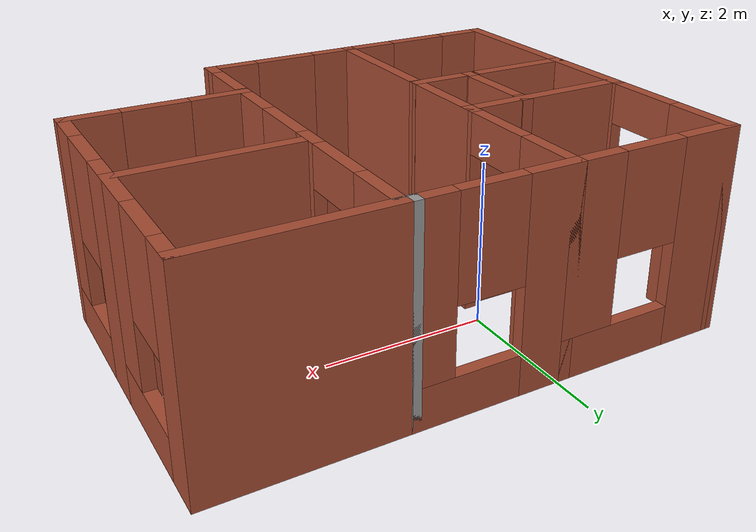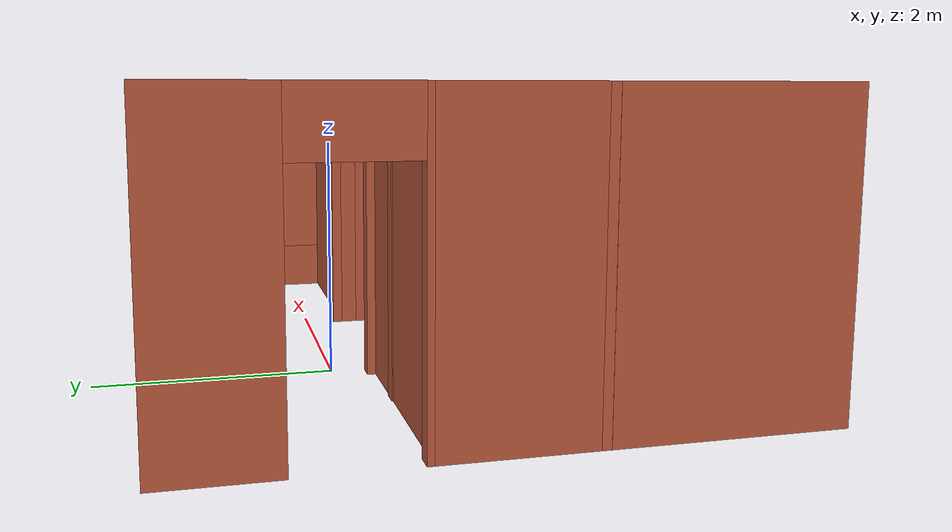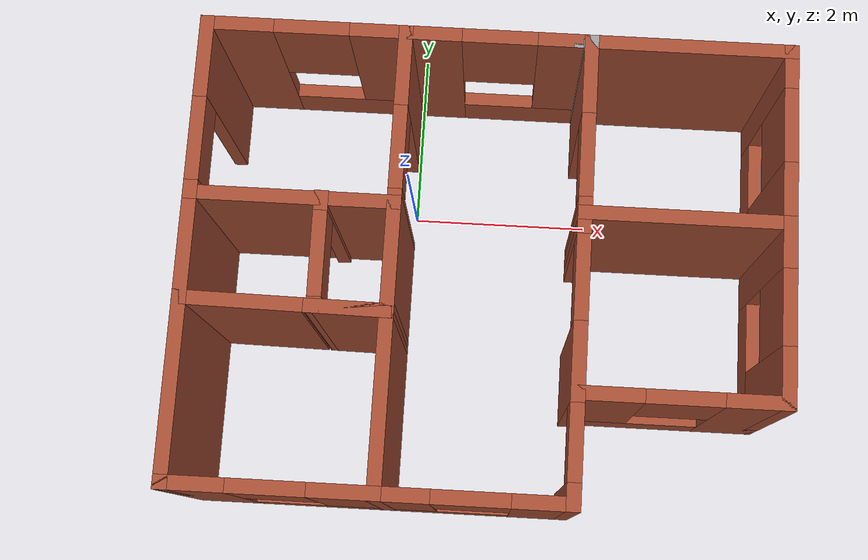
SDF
<?xml version='1.0'?>
<sdf version='1.7'>
  <model name='2house'>
    <pose>0.889468 -0.990027 0 0 -0 0</pose>
    <link name='Wall_0'>
      <collision name='Wall_0_Collision'>
        <geometry>
          <box>
            <size>2 0.15 2.5</size>
          </box>
        </geometry>
        <pose>0 0 1.25 0 -0 0</pose>
      </collision>
      <visual name='Wall_0_Visual'>
        <pose>0 0 1.25 0 -0 0</pose>
        <geometry>
          <box>
            <size>2 0.15 2.5</size>
          </box>
        </geometry>
        <material>
          <script>
            <uri>file://media/materials/scripts/gazebo.material</uri>
            <name>Gazebo/Bricks</name>
          </script>
          <ambient>1 1 1 1</ambient>
        </material>
        <meta>
          <layer>0</layer>
        </meta>
      </visual>
      <pose>-3.07947 -1.47497 0 0 -0 -1.5708</pose>
    </link>
    <link name='Wall_1'>
      <pose>-2.02947 -2.39997 0 0 -0 0</pose>
      <visual name='Wall_1_Visual_0'>
        <pose>-0.770774 0 1.25 0 -0 0</pose>
        <geometry>
          <box>
            <size>0.708452 0.15 2.5</size>
          </box>
        </geometry>
        <material>
          <script>
            <uri>file://media/materials/scripts/gazebo.material</uri>
            <name>Gazebo/Bricks</name>
          </script>
          <ambient>1 1 1 1</ambient>
        </material>
        <meta>
          <layer>0</layer>
        </meta>
      </visual>
      <collision name='Wall_1_Collision_0'>
        <geometry>
          <box>
            <size>0.708452 0.15 2.5</size>
          </box>
        </geometry>
        <pose>-0.770774 0 1.25 0 -0 0</pose>
      </collision>
      <visual name='Wall_1_Visual_1'>
        <pose>0.354226 0 0.25 0 -0 0</pose>
        <geometry>
          <box>
            <size>1.54155 0.15 0.5</size>
          </box>
        </geometry>
        <material>
          <script>
            <uri>file://media/materials/scripts/gazebo.material</uri>
            <name>Gazebo/Bricks</name>
          </script>
          <ambient>1 1 1 1</ambient>
        </material>
        <meta>
          <layer>0</layer>
        </meta>
      </visual>
      <collision name='Wall_1_Collision_1'>
        <geometry>
          <box>
            <size>1.54155 0.15 0.5</size>
          </box>
        </geometry>
        <pose>0.354226 0 0.25 0 -0 0</pose>
      </collision>
      <visual name='Wall_1_Visual_2'>
        <pose>0.754226 0 1.5 0 -0 0</pose>
        <geometry>
          <box>
            <size>0.741548 0.15 2</size>
          </box>
        </geometry>
        <material>
          <script>
            <uri>file://media/materials/scripts/gazebo.material</uri>
            <name>Gazebo/Bricks</name>
          </script>
          <ambient>1 1 1 1</ambient>
        </material>
        <meta>
          <layer>0</layer>
        </meta>
      </visual>
      <collision name='Wall_1_Collision_2'>
        <geometry>
          <box>
            <size>0.741548 0.15 2</size>
          </box>
        </geometry>
        <pose>0.754226 0 1.5 0 -0 0</pose>
      </collision>
      <visual name='Wall_1_Visual_3'>
        <pose>-0.016548 0 1.9 0 -0 0</pose>
        <geometry>
          <box>
            <size>0.8 0.15 1.2</size>
          </box>
        </geometry>
        <material>
          <script>
            <uri>file://media/materials/scripts/gazebo.material</uri>
            <name>Gazebo/Bricks</name>
          </script>
          <ambient>1 1 1 1</ambient>
        </material>
        <meta>
          <layer>0</layer>
        </meta>
      </visual>
      <collision name='Wall_1_Collision_3'>
        <geometry>
          <box>
            <size>0.8 0.15 1.2</size>
          </box>
        </geometry>
        <pose>-0.016548 0 1.9 0 -0 0</pose>
      </collision>
    </link>
    <link name='Wall_17'>
      <collision name='Wall_17_Collision'>
        <geometry>
          <box>
            <size>1.25 0.15 2.5</size>
          </box>
        </geometry>
        <pose>0 0 1.25 0 -0 0</pose>
      </collision>
      <visual name='Wall_17_Visual'>
        <pose>0 0 1.25 0 -0 0</pose>
        <geometry>
          <box>
            <size>1.25 0.15 2.5</size>
          </box>
        </geometry>
        <material>
          <script>
            <uri>file://media/materials/scripts/gazebo.material</uri>
            <name>Gazebo/Bricks</name>
          </script>
          <ambient>1 1 1 1</ambient>
        </material>
        <meta>
          <layer>0</layer>
        </meta>
      </visual>
      <pose>-3.07947 2.7e-05 0 0 -0 1.5708</pose>
    </link>
    <link name='Wall_18'>
      <collision name='Wall_18_Collision'>
        <geometry>
          <box>
            <size>2.25 0.15 2.5</size>
          </box>
        </geometry>
        <pose>0 0 1.25 0 -0 0</pose>
      </collision>
      <visual name='Wall_18_Visual'>
        <pose>0 0 1.25 0 -0 0</pose>
        <geometry>
          <box>
            <size>2.25 0.15 2.5</size>
          </box>
        </geometry>
        <material>
          <script>
            <uri>file://media/materials/scripts/gazebo.material</uri>
            <name>Gazebo/Bricks</name>
          </script>
          <ambient>1 1 1 1</ambient>
        </material>
        <meta>
          <layer>0</layer>
        </meta>
      </visual>
      <pose>-2.02947 0.550027 0 0 -0 0</pose>
    </link>
    <link name='Wall_19'>
      <collision name='Wall_19_Collision'>
        <geometry>
          <box>
            <size>1.28018 0.15 2.5</size>
          </box>
        </geometry>
        <pose>0 0 1.25 0 -0 0</pose>
      </collision>
      <visual name='Wall_19_Visual'>
        <pose>0 0 1.25 0 -0 0</pose>
        <geometry>
          <box>
            <size>1.28018 0.15 2.5</size>
          </box>
        </geometry>
        <material>
          <script>
            <uri>file://media/materials/scripts/gazebo.material</uri>
            <name>Gazebo/Bricks</name>
          </script>
          <ambient>1 1 1 1</ambient>
        </material>
        <meta>
          <layer>0</layer>
        </meta>
      </visual>
      <pose>-0.979468 -0.014973 0 0 -0 -1.5708</pose>
    </link>
    <link name='Wall_2'>
      <collision name='Wall_2_Collision'>
        <geometry>
          <box>
            <size>1.97011 0.15 2.5</size>
          </box>
        </geometry>
        <pose>0 0 1.25 0 -0 0</pose>
      </collision>
      <visual name='Wall_2_Visual'>
        <pose>0 0 1.25 0 -0 0</pose>
        <geometry>
          <box>
            <size>1.97011 0.15 2.5</size>
          </box>
        </geometry>
        <material>
          <script>
            <uri>file://media/materials/scripts/gazebo.material</uri>
            <name>Gazebo/Bricks</name>
          </script>
          <ambient>1 1 1 1</ambient>
        </material>
        <meta>
          <layer>0</layer>
        </meta>
      </visual>
      <pose>-0.979468 -1.48997 0 0 -0 1.5708</pose>
    </link>
    <link name='Wall_20'>
      <collision name='Wall_20_Collision'>
        <geometry>
          <box>
            <size>0.890068 0.15 2.5</size>
          </box>
        </geometry>
        <pose>0 0 1.25 0 -0 0</pose>
      </collision>
      <visual name='Wall_20_Visual'>
        <pose>0 0 1.25 0 -0 0</pose>
        <geometry>
          <box>
            <size>0.890068 0.15 2.5</size>
          </box>
        </geometry>
        <material>
          <script>
            <uri>file://media/materials/scripts/gazebo.material</uri>
            <name>Gazebo/Bricks</name>
          </script>
          <ambient>1 1 1 1</ambient>
        </material>
        <meta>
          <layer>0</layer>
        </meta>
      </visual>
      <pose>-1.35947 -0.574973 0 0 -0 3.12808</pose>
    </link>
    <link name='Wall_21'>
      <pose>-1.72447 -0.004973 0 0 -0 1.57965</pose>
      <visual name='Wall_21_Visual_0'>
        <pose>-0.55431 0 1.25 0 -0 0</pose>
        <geometry>
          <box>
            <size>0.171424 0.15 2.5</size>
          </box>
        </geometry>
        <material>
          <script>
            <uri>file://media/materials/scripts/gazebo.material</uri>
            <name>Gazebo/Bricks</name>
          </script>
          <ambient>1 1 1 1</ambient>
        </material>
        <meta>
          <layer>0</layer>
        </meta>
      </visual>
      <collision name='Wall_21_Collision_0'>
        <geometry>
          <box>
            <size>0.171424 0.15 2.5</size>
          </box>
        </geometry>
        <pose>-0.55431 0 1.25 0 -0 0</pose>
      </collision>
      <visual name='Wall_21_Visual_1'>
        <pose>0.535712 0 1.25 0 -0 0</pose>
        <geometry>
          <box>
            <size>0.20862 0.15 2.5</size>
          </box>
        </geometry>
        <material>
          <script>
            <uri>file://media/materials/scripts/gazebo.material</uri>
            <name>Gazebo/Bricks</name>
          </script>
          <ambient>1 1 1 1</ambient>
        </material>
        <meta>
          <layer>0</layer>
        </meta>
      </visual>
      <collision name='Wall_21_Collision_1'>
        <geometry>
          <box>
            <size>0.20862 0.15 2.5</size>
          </box>
        </geometry>
        <pose>0.535712 0 1.25 0 -0 0</pose>
      </collision>
      <visual name='Wall_21_Visual_2'>
        <pose>-0.018598 0 2.25 0 -0 0</pose>
        <geometry>
          <box>
            <size>0.9 0.15 0.5</size>
          </box>
        </geometry>
        <material>
          <script>
            <uri>file://media/materials/scripts/gazebo.material</uri>
            <name>Gazebo/Bricks</name>
          </script>
          <ambient>1 1 1 1</ambient>
        </material>
        <meta>
          <layer>0</layer>
        </meta>
      </visual>
      <collision name='Wall_21_Collision_2'>
        <geometry>
          <box>
            <size>0.9 0.15 0.5</size>
          </box>
        </geometry>
        <pose>-0.018598 0 2.25 0 -0 0</pose>
      </collision>
    </link>
    <link name='Wall_23'>
      <pose>-3.07947 1.47503 0 0 -0 1.5708</pose>
      <visual name='Wall_23_Visual_0'>
        <pose>-0.89882 0 1.25 0 -0 0</pose>
        <geometry>
          <box>
            <size>0.202361 0.15 2.5</size>
          </box>
        </geometry>
        <material>
          <script>
            <uri>file://media/materials/scripts/gazebo.material</uri>
            <name>Gazebo/Bricks</name>
          </script>
          <ambient>1 1 1 1</ambient>
        </material>
        <meta>
          <layer>0</layer>
        </meta>
      </visual>
      <collision name='Wall_23_Collision_0'>
        <geometry>
          <box>
            <size>0.202361 0.15 2.5</size>
          </box>
        </geometry>
        <pose>-0.89882 0 1.25 0 -0 0</pose>
      </collision>
      <visual name='Wall_23_Visual_1'>
        <pose>0.55118 0 1.25 0 -0 0</pose>
        <geometry>
          <box>
            <size>0.897639 0.15 2.5</size>
          </box>
        </geometry>
        <material>
          <script>
            <uri>file://media/materials/scripts/gazebo.material</uri>
            <name>Gazebo/Bricks</name>
          </script>
          <ambient>1 1 1 1</ambient>
        </material>
        <meta>
          <layer>0</layer>
        </meta>
      </visual>
      <collision name='Wall_23_Collision_1'>
        <geometry>
          <box>
            <size>0.897639 0.15 2.5</size>
          </box>
        </geometry>
        <pose>0.55118 0 1.25 0 -0 0</pose>
      </collision>
      <visual name='Wall_23_Visual_2'>
        <pose>-0.347639 0 2.25 0 -0 0</pose>
        <geometry>
          <box>
            <size>0.9 0.15 0.5</size>
          </box>
        </geometry>
        <material>
          <script>
            <uri>file://media/materials/scripts/gazebo.material</uri>
            <name>Gazebo/Bricks</name>
          </script>
          <ambient>1 1 1 1</ambient>
        </material>
        <meta>
          <layer>0</layer>
        </meta>
      </visual>
      <collision name='Wall_23_Collision_2'>
        <geometry>
          <box>
            <size>0.9 0.15 0.5</size>
          </box>
        </geometry>
        <pose>-0.347639 0 2.25 0 -0 0</pose>
      </collision>
    </link>
    <link name='Wall_25'>
      <pose>-2.02947 2.40003 0 0 -0 0</pose>
      <visual name='Wall_25_Visual_0'>
        <pose>-0.735774 0 1.25 0 -0 0</pose>
        <geometry>
          <box>
            <size>0.778452 0.15 2.5</size>
          </box>
        </geometry>
        <material>
          <script>
            <uri>file://media/materials/scripts/gazebo.material</uri>
            <name>Gazebo/Bricks</name>
          </script>
          <ambient>1 1 1 1</ambient>
        </material>
        <meta>
          <layer>0</layer>
        </meta>
      </visual>
      <collision name='Wall_25_Collision_0'>
        <geometry>
          <box>
            <size>0.778452 0.15 2.5</size>
          </box>
        </geometry>
        <pose>-0.735774 0 1.25 0 -0 0</pose>
      </collision>
      <visual name='Wall_25_Visual_1'>
        <pose>0.389226 0 0.25 0 -0 0</pose>
        <geometry>
          <box>
            <size>1.47155 0.15 0.5</size>
          </box>
        </geometry>
        <material>
          <script>
            <uri>file://media/materials/scripts/gazebo.material</uri>
            <name>Gazebo/Bricks</name>
          </script>
          <ambient>1 1 1 1</ambient>
        </material>
        <meta>
          <layer>0</layer>
        </meta>
      </visual>
      <collision name='Wall_25_Collision_1'>
        <geometry>
          <box>
            <size>1.47155 0.15 0.5</size>
          </box>
        </geometry>
        <pose>0.389226 0 0.25 0 -0 0</pose>
      </collision>
      <visual name='Wall_25_Visual_2'>
        <pose>0.789226 0 1.5 0 -0 0</pose>
        <geometry>
          <box>
            <size>0.671548 0.15 2</size>
          </box>
        </geometry>
        <material>
          <script>
            <uri>file://media/materials/scripts/gazebo.material</uri>
            <name>Gazebo/Bricks</name>
          </script>
          <ambient>1 1 1 1</ambient>
        </material>
        <meta>
          <layer>0</layer>
        </meta>
      </visual>
      <collision name='Wall_25_Collision_2'>
        <geometry>
          <box>
            <size>0.671548 0.15 2</size>
          </box>
        </geometry>
        <pose>0.789226 0 1.5 0 -0 0</pose>
      </collision>
      <visual name='Wall_25_Visual_3'>
        <pose>0.053452 0 1.9 0 -0 0</pose>
        <geometry>
          <box>
            <size>0.8 0.15 1.2</size>
          </box>
        </geometry>
        <material>
          <script>
            <uri>file://media/materials/scripts/gazebo.material</uri>
            <name>Gazebo/Bricks</name>
          </script>
          <ambient>1 1 1 1</ambient>
        </material>
        <meta>
          <layer>0</layer>
        </meta>
      </visual>
      <collision name='Wall_25_Collision_3'>
        <geometry>
          <box>
            <size>0.8 0.15 1.2</size>
          </box>
        </geometry>
        <pose>0.053452 0 1.9 0 -0 0</pose>
      </collision>
    </link>
    <link name='Wall_26'>
      <pose>-0.979468 1.47503 0 0 -0 -1.5708</pose>
      <visual name='Wall_26_Visual_0'>
        <pose>-0.56118 0 1.25 0 -0 0</pose>
        <geometry>
          <box>
            <size>0.877639 0.15 2.5</size>
          </box>
        </geometry>
        <material>
          <script>
            <uri>file://media/materials/scripts/gazebo.material</uri>
            <name>Gazebo/Bricks</name>
          </script>
          <ambient>1 1 1 1</ambient>
        </material>
        <meta>
          <layer>0</layer>
        </meta>
      </visual>
      <collision name='Wall_26_Collision_0'>
        <geometry>
          <box>
            <size>0.877639 0.15 2.5</size>
          </box>
        </geometry>
        <pose>-0.56118 0 1.25 0 -0 0</pose>
      </collision>
      <visual name='Wall_26_Visual_1'>
        <pose>0.88882 0 1.25 0 -0 0</pose>
        <geometry>
          <box>
            <size>0.222361 0.15 2.5</size>
          </box>
        </geometry>
        <material>
          <script>
            <uri>file://media/materials/scripts/gazebo.material</uri>
            <name>Gazebo/Bricks</name>
          </script>
          <ambient>1 1 1 1</ambient>
        </material>
        <meta>
          <layer>0</layer>
        </meta>
      </visual>
      <collision name='Wall_26_Collision_1'>
        <geometry>
          <box>
            <size>0.222361 0.15 2.5</size>
          </box>
        </geometry>
        <pose>0.88882 0 1.25 0 -0 0</pose>
      </collision>
      <visual name='Wall_26_Visual_2'>
        <pose>0.327639 0 2.25 0 -0 0</pose>
        <geometry>
          <box>
            <size>0.9 0.15 0.5</size>
          </box>
        </geometry>
        <material>
          <script>
            <uri>file://media/materials/scripts/gazebo.material</uri>
            <name>Gazebo/Bricks</name>
          </script>
          <ambient>1 1 1 1</ambient>
        </material>
        <meta>
          <layer>0</layer>
        </meta>
      </visual>
      <collision name='Wall_26_Collision_2'>
        <geometry>
          <box>
            <size>0.9 0.15 0.5</size>
          </box>
        </geometry>
        <pose>0.327639 0 2.25 0 -0 0</pose>
      </collision>
    </link>
    <link name='Wall_3'>
      <pose>-2.02947 -0.564973 0 0 -0 3.12731</pose>
      <visual name='Wall_3_Visual_0'>
        <pose>-1.11431 0 1.25 0 -0 0</pose>
        <geometry>
          <box>
            <size>0.021588 0.15 2.5</size>
          </box>
        </geometry>
        <material>
          <script>
            <uri>file://media/materials/scripts/gazebo.material</uri>
            <name>Gazebo/Bricks</name>
          </script>
          <ambient>1 1 1 1</ambient>
        </material>
        <meta>
          <layer>0</layer>
        </meta>
      </visual>
      <collision name='Wall_3_Collision_0'>
        <geometry>
          <box>
            <size>0.021588 0.15 2.5</size>
          </box>
        </geometry>
        <pose>-1.11431 0 1.25 0 -0 0</pose>
      </collision>
      <visual name='Wall_3_Visual_1'>
        <pose>0.460794 0 1.25 0 -0 0</pose>
        <geometry>
          <box>
            <size>1.32863 0.15 2.5</size>
          </box>
        </geometry>
        <material>
          <script>
            <uri>file://media/materials/scripts/gazebo.material</uri>
            <name>Gazebo/Bricks</name>
          </script>
          <ambient>1 1 1 1</ambient>
        </material>
        <meta>
          <layer>0</layer>
        </meta>
      </visual>
      <collision name='Wall_3_Collision_1'>
        <geometry>
          <box>
            <size>1.32863 0.15 2.5</size>
          </box>
        </geometry>
        <pose>0.460794 0 1.25 0 -0 0</pose>
      </collision>
      <visual name='Wall_3_Visual_2'>
        <pose>-0.653519 0 2.25 0 -0 0</pose>
        <geometry>
          <box>
            <size>0.9 0.15 0.5</size>
          </box>
        </geometry>
        <material>
          <script>
            <uri>file://media/materials/scripts/gazebo.material</uri>
            <name>Gazebo/Bricks</name>
          </script>
          <ambient>1 1 1 1</ambient>
        </material>
        <meta>
          <layer>0</layer>
        </meta>
      </visual>
      <collision name='Wall_3_Collision_2'>
        <geometry>
          <box>
            <size>0.9 0.15 0.5</size>
          </box>
        </geometry>
        <pose>-0.653519 0 2.25 0 -0 0</pose>
      </collision>
    </link>
    <link name='Wall_30'>
      <pose>-0.054468 2.40003 0 0 -0 0</pose>
      <visual name='Wall_30_Visual_0'>
        <pose>-0.665774 0 1.25 0 -0 0</pose>
        <geometry>
          <box>
            <size>0.668452 0.15 2.5</size>
          </box>
        </geometry>
        <material>
          <script>
            <uri>file://media/materials/scripts/gazebo.material</uri>
            <name>Gazebo/Bricks</name>
          </script>
          <ambient>1 1 1 1</ambient>
        </material>
        <meta>
          <layer>0</layer>
        </meta>
      </visual>
      <collision name='Wall_30_Collision_0'>
        <geometry>
          <box>
            <size>0.668452 0.15 2.5</size>
          </box>
        </geometry>
        <pose>-0.665774 0 1.25 0 -0 0</pose>
      </collision>
      <visual name='Wall_30_Visual_1'>
        <pose>0.334226 0 0.25 0 -0 0</pose>
        <geometry>
          <box>
            <size>1.33155 0.15 0.5</size>
          </box>
        </geometry>
        <material>
          <script>
            <uri>file://media/materials/scripts/gazebo.material</uri>
            <name>Gazebo/Bricks</name>
          </script>
          <ambient>1 1 1 1</ambient>
        </material>
        <meta>
          <layer>0</layer>
        </meta>
      </visual>
      <collision name='Wall_30_Collision_1'>
        <geometry>
          <box>
            <size>1.33155 0.15 0.5</size>
          </box>
        </geometry>
        <pose>0.334226 0 0.25 0 -0 0</pose>
      </collision>
      <visual name='Wall_30_Visual_2'>
        <pose>0.734226 0 1.5 0 -0 0</pose>
        <geometry>
          <box>
            <size>0.531548 0.15 2</size>
          </box>
        </geometry>
        <material>
          <script>
            <uri>file://media/materials/scripts/gazebo.material</uri>
            <name>Gazebo/Bricks</name>
          </script>
          <ambient>1 1 1 1</ambient>
        </material>
        <meta>
          <layer>0</layer>
        </meta>
      </visual>
      <collision name='Wall_30_Collision_2'>
        <geometry>
          <box>
            <size>0.531548 0.15 2</size>
          </box>
        </geometry>
        <pose>0.734226 0 1.5 0 -0 0</pose>
      </collision>
      <visual name='Wall_30_Visual_3'>
        <pose>0.068452 0 1.9 0 -0 0</pose>
        <geometry>
          <box>
            <size>0.8 0.15 1.2</size>
          </box>
        </geometry>
        <material>
          <script>
            <uri>file://media/materials/scripts/gazebo.material</uri>
            <name>Gazebo/Bricks</name>
          </script>
          <ambient>1 1 1 1</ambient>
        </material>
        <meta>
          <layer>0</layer>
        </meta>
      </visual>
      <collision name='Wall_30_Collision_3'>
        <geometry>
          <box>
            <size>0.8 0.15 1.2</size>
          </box>
        </geometry>
        <pose>0.068452 0 1.9 0 -0 0</pose>
      </collision>
    </link>
    <link name='Wall_31'>
      <collision name='Wall_31_Collision'>
        <geometry>
          <box>
            <size>0.25 0.15 2.5</size>
          </box>
        </geometry>
        <pose>0 0 1.25 0 -0 0</pose>
      </collision>
      <visual name='Wall_31_Visual'>
        <pose>0 0 1.25 0 -0 0</pose>
        <geometry>
          <box>
            <size>0.25 0.15 2.5</size>
          </box>
        </geometry>
        <material>
          <script>
            <uri>file://media/materials/scripts/gazebo.material</uri>
            <name>Gazebo/Grey</name>
          </script>
          <ambient>1 1 1 1</ambient>
        </material>
        <meta>
          <layer>0</layer>
        </meta>
      </visual>
      <pose>0.920532 2.40003 0 0 -0 0</pose>
    </link>
    <link name='Wall_34'>
      <collision name='Wall_34_Collision'>
        <geometry>
          <box>
            <size>0.25 0.15 2.5</size>
          </box>
        </geometry>
        <pose>0 0 1.25 0 -0 0</pose>
      </collision>
      <visual name='Wall_34_Visual'>
        <pose>0 0 1.25 0 -0 0</pose>
        <geometry>
          <box>
            <size>0.25 0.15 2.5</size>
          </box>
        </geometry>
        <material>
          <script>
            <uri>file://media/materials/scripts/gazebo.material</uri>
            <name>Gazebo/Bricks</name>
          </script>
          <ambient>1 1 1 1</ambient>
        </material>
        <meta>
          <layer>0</layer>
        </meta>
      </visual>
      <pose>0.920532 2.40003 0 0 -0 0</pose>
    </link>
    <link name='Wall_35'>
      <collision name='Wall_35_Collision'>
        <geometry>
          <box>
            <size>0.16 0.15 2.5</size>
          </box>
        </geometry>
        <pose>0 0 1.25 0 -0 0</pose>
      </collision>
      <visual name='Wall_35_Visual'>
        <pose>0 0 1.25 0 -0 0</pose>
        <geometry>
          <box>
            <size>0.16 0.15 2.5</size>
          </box>
        </geometry>
        <material>
          <script>
            <uri>file://media/materials/scripts/gazebo.material</uri>
            <name>Gazebo/Grey</name>
          </script>
          <ambient>1 1 1 1</ambient>
        </material>
        <meta>
          <layer>0</layer>
        </meta>
      </visual>
      <pose>0.975532 2.40003 0 0 -0 0</pose>
    </link>
    <link name='Wall_36'>
      <pose>0.980532 2.7e-05 0 0 -0 -1.5708</pose>
      <visual name='Wall_36_Visual_0'>
        <pose>-2.04618 0 1.25 0 -0 0</pose>
        <geometry>
          <box>
            <size>0.857639 0.15 2.5</size>
          </box>
        </geometry>
        <material>
          <script>
            <uri>file://media/materials/scripts/gazebo.material</uri>
            <name>Gazebo/Bricks</name>
          </script>
          <ambient>1 1 1 1</ambient>
        </material>
        <meta>
          <layer>0</layer>
        </meta>
      </visual>
      <collision name='Wall_36_Collision_0'>
        <geometry>
          <box>
            <size>0.857639 0.15 2.5</size>
          </box>
        </geometry>
        <pose>-2.04618 0 1.25 0 -0 0</pose>
      </collision>
      <visual name='Wall_36_Visual_1'>
        <pose>-0.522361 0 1.25 0 -0 0</pose>
        <geometry>
          <box>
            <size>0.39 0.15 2.5</size>
          </box>
        </geometry>
        <material>
          <script>
            <uri>file://media/materials/scripts/gazebo.material</uri>
            <name>Gazebo/Bricks</name>
          </script>
          <ambient>1 1 1 1</ambient>
        </material>
        <meta>
          <layer>0</layer>
        </meta>
      </visual>
      <collision name='Wall_36_Collision_1'>
        <geometry>
          <box>
            <size>0.39 0.15 2.5</size>
          </box>
        </geometry>
        <pose>-0.522361 0 1.25 0 -0 0</pose>
      </collision>
      <visual name='Wall_36_Visual_2'>
        <pose>0.985139 0 1.25 0 -0 0</pose>
        <geometry>
          <box>
            <size>0.825 0.15 2.5</size>
          </box>
        </geometry>
        <material>
          <script>
            <uri>file://media/materials/scripts/gazebo.material</uri>
            <name>Gazebo/Bricks</name>
          </script>
          <ambient>1 1 1 1</ambient>
        </material>
        <meta>
          <layer>0</layer>
        </meta>
      </visual>
      <collision name='Wall_36_Collision_2'>
        <geometry>
          <box>
            <size>0.825 0.15 2.5</size>
          </box>
        </geometry>
        <pose>0.985139 0 1.25 0 -0 0</pose>
      </collision>
      <visual name='Wall_36_Visual_3'>
        <pose>2.33132 0 1.25 0 -0 0</pose>
        <geometry>
          <box>
            <size>0.287361 0.15 2.5</size>
          </box>
        </geometry>
        <material>
          <script>
            <uri>file://media/materials/scripts/gazebo.material</uri>
            <name>Gazebo/Bricks</name>
          </script>
          <ambient>1 1 1 1</ambient>
        </material>
        <meta>
          <layer>0</layer>
        </meta>
      </visual>
      <collision name='Wall_36_Collision_3'>
        <geometry>
          <box>
            <size>0.287361 0.15 2.5</size>
          </box>
        </geometry>
        <pose>2.33132 0 1.25 0 -0 0</pose>
      </collision>
      <visual name='Wall_36_Visual_4'>
        <pose>-1.16736 0 2.25 0 -0 0</pose>
        <geometry>
          <box>
            <size>0.9 0.15 0.5</size>
          </box>
        </geometry>
        <material>
          <script>
            <uri>file://media/materials/scripts/gazebo.material</uri>
            <name>Gazebo/Bricks</name>
          </script>
          <ambient>1 1 1 1</ambient>
        </material>
        <meta>
          <layer>0</layer>
        </meta>
      </visual>
      <collision name='Wall_36_Collision_4'>
        <geometry>
          <box>
            <size>0.9 0.15 0.5</size>
          </box>
        </geometry>
        <pose>-1.16736 0 2.25 0 -0 0</pose>
      </collision>
      <visual name='Wall_36_Visual_5'>
        <pose>0.122639 0 2.25 0 -0 0</pose>
        <geometry>
          <box>
            <size>0.9 0.15 0.5</size>
          </box>
        </geometry>
        <material>
          <script>
            <uri>file://media/materials/scripts/gazebo.material</uri>
            <name>Gazebo/Bricks</name>
          </script>
          <ambient>1 1 1 1</ambient>
        </material>
        <meta>
          <layer>0</layer>
        </meta>
      </visual>
      <collision name='Wall_36_Collision_5'>
        <geometry>
          <box>
            <size>0.9 0.15 0.5</size>
          </box>
        </geometry>
        <pose>0.122639 0 2.25 0 -0 0</pose>
      </collision>
      <visual name='Wall_36_Visual_6'>
        <pose>1.79264 0 2.25 0 -0 0</pose>
        <geometry>
          <box>
            <size>0.79 0.15 0.5</size>
          </box>
        </geometry>
        <material>
          <script>
            <uri>file://media/materials/scripts/gazebo.material</uri>
            <name>Gazebo/Bricks</name>
          </script>
          <ambient>1 1 1 1</ambient>
        </material>
        <meta>
          <layer>0</layer>
        </meta>
      </visual>
      <collision name='Wall_36_Collision_6'>
        <geometry>
          <box>
            <size>0.79 0.15 0.5</size>
          </box>
        </geometry>
        <pose>1.79264 0 2.25 0 -0 0</pose>
      </collision>
    </link>
    <link name='Wall_37'>
      <pose>0.000532 -2.39997 0 0 -0 -3.14159</pose>
      <visual name='Wall_37_Visual_0'>
        <pose>-0.714386 0 1.25 0 -0 0</pose>
        <geometry>
          <box>
            <size>0.681866 0.15 2.5</size>
          </box>
        </geometry>
        <material>
          <script>
            <uri>file://media/materials/scripts/gazebo.material</uri>
            <name>Gazebo/Bricks</name>
          </script>
          <ambient>1 1 1 1</ambient>
        </material>
        <meta>
          <layer>0</layer>
        </meta>
      </visual>
      <collision name='Wall_37_Collision_0'>
        <geometry>
          <box>
            <size>0.681866 0.15 2.5</size>
          </box>
        </geometry>
        <pose>-0.714386 0 1.25 0 -0 0</pose>
      </collision>
      <visual name='Wall_37_Visual_1'>
        <pose>0.340933 0 0.25 0 -0 0</pose>
        <geometry>
          <box>
            <size>1.42877 0.15 0.5</size>
          </box>
        </geometry>
        <material>
          <script>
            <uri>file://media/materials/scripts/gazebo.material</uri>
            <name>Gazebo/Bricks</name>
          </script>
          <ambient>1 1 1 1</ambient>
        </material>
        <meta>
          <layer>0</layer>
        </meta>
      </visual>
      <collision name='Wall_37_Collision_1'>
        <geometry>
          <box>
            <size>1.42877 0.15 0.5</size>
          </box>
        </geometry>
        <pose>0.340933 0 0.25 0 -0 0</pose>
      </collision>
      <visual name='Wall_37_Visual_2'>
        <pose>0.740933 0 1.5 0 -0 0</pose>
        <geometry>
          <box>
            <size>0.628771 0.15 2</size>
          </box>
        </geometry>
        <material>
          <script>
            <uri>file://media/materials/scripts/gazebo.material</uri>
            <name>Gazebo/Bricks</name>
          </script>
          <ambient>1 1 1 1</ambient>
        </material>
        <meta>
          <layer>0</layer>
        </meta>
      </visual>
      <collision name='Wall_37_Collision_2'>
        <geometry>
          <box>
            <size>0.628771 0.15 2</size>
          </box>
        </geometry>
        <pose>0.740933 0 1.5 0 -0 0</pose>
      </collision>
      <visual name='Wall_37_Visual_3'>
        <pose>0.026548 0 1.9 0 -0 0</pose>
        <geometry>
          <box>
            <size>0.8 0.15 1.2</size>
          </box>
        </geometry>
        <material>
          <script>
            <uri>file://media/materials/scripts/gazebo.material</uri>
            <name>Gazebo/Bricks</name>
          </script>
          <ambient>1 1 1 1</ambient>
        </material>
        <meta>
          <layer>0</layer>
        </meta>
      </visual>
      <collision name='Wall_37_Collision_3'>
        <geometry>
          <box>
            <size>0.8 0.15 1.2</size>
          </box>
        </geometry>
        <pose>0.026548 0 1.9 0 -0 0</pose>
      </collision>
    </link>
    <link name='Wall_40'>
      <collision name='Wall_40_Collision'>
        <geometry>
          <box>
            <size>2.25 0.15 2.5</size>
          </box>
        </geometry>
        <pose>0 0 1.25 0 -0 0</pose>
      </collision>
      <visual name='Wall_40_Visual'>
        <pose>0 0 1.25 0 -0 0</pose>
        <geometry>
          <box>
            <size>2.25 0.15 2.5</size>
          </box>
        </geometry>
        <material>
          <script>
            <uri>file://media/materials/scripts/gazebo.material</uri>
            <name>Gazebo/Bricks</name>
          </script>
          <ambient>1 1 1 1</ambient>
        </material>
        <meta>
          <layer>0</layer>
        </meta>
      </visual>
      <pose>2.03053 2.40003 0 0 -0 0</pose>
    </link>
    <link name='Wall_41'>
      <pose>3.08053 1.47503 0 0 -0 -1.5708</pose>
      <visual name='Wall_41_Visual_0'>
        <pose>-0.76118 0 1.25 0 -0 0</pose>
        <geometry>
          <box>
            <size>0.477639 0.15 2.5</size>
          </box>
        </geometry>
        <material>
          <script>
            <uri>file://media/materials/scripts/gazebo.material</uri>
            <name>Gazebo/Bricks</name>
          </script>
          <ambient>1 1 1 1</ambient>
        </material>
        <meta>
          <layer>0</layer>
        </meta>
      </visual>
      <collision name='Wall_41_Collision_0'>
        <geometry>
          <box>
            <size>0.477639 0.15 2.5</size>
          </box>
        </geometry>
        <pose>-0.76118 0 1.25 0 -0 0</pose>
      </collision>
      <visual name='Wall_41_Visual_1'>
        <pose>0.23882 0 0.25 0 -0 0</pose>
        <geometry>
          <box>
            <size>1.52236 0.15 0.5</size>
          </box>
        </geometry>
        <material>
          <script>
            <uri>file://media/materials/scripts/gazebo.material</uri>
            <name>Gazebo/Bricks</name>
          </script>
          <ambient>1 1 1 1</ambient>
        </material>
        <meta>
          <layer>0</layer>
        </meta>
      </visual>
      <collision name='Wall_41_Collision_1'>
        <geometry>
          <box>
            <size>1.52236 0.15 0.5</size>
          </box>
        </geometry>
        <pose>0.23882 0 0.25 0 -0 0</pose>
      </collision>
      <visual name='Wall_41_Visual_2'>
        <pose>0.63882 0 1.5 0 -0 0</pose>
        <geometry>
          <box>
            <size>0.722361 0.15 2</size>
          </box>
        </geometry>
        <material>
          <script>
            <uri>file://media/materials/scripts/gazebo.material</uri>
            <name>Gazebo/Bricks</name>
          </script>
          <ambient>1 1 1 1</ambient>
        </material>
        <meta>
          <layer>0</layer>
        </meta>
      </visual>
      <collision name='Wall_41_Collision_2'>
        <geometry>
          <box>
            <size>0.722361 0.15 2</size>
          </box>
        </geometry>
        <pose>0.63882 0 1.5 0 -0 0</pose>
      </collision>
      <visual name='Wall_41_Visual_3'>
        <pose>-0.122361 0 1.9 0 -0 0</pose>
        <geometry>
          <box>
            <size>0.8 0.15 1.2</size>
          </box>
        </geometry>
        <material>
          <script>
            <uri>file://media/materials/scripts/gazebo.material</uri>
            <name>Gazebo/Bricks</name>
          </script>
          <ambient>1 1 1 1</ambient>
        </material>
        <meta>
          <layer>0</layer>
        </meta>
      </visual>
      <collision name='Wall_41_Collision_3'>
        <geometry>
          <box>
            <size>0.8 0.15 1.2</size>
          </box>
        </geometry>
        <pose>-0.122361 0 1.9 0 -0 0</pose>
      </collision>
    </link>
    <link name='Wall_42'>
      <collision name='Wall_42_Collision'>
        <geometry>
          <box>
            <size>2.25 0.15 2.5</size>
          </box>
        </geometry>
        <pose>0 0 1.25 0 -0 0</pose>
      </collision>
      <visual name='Wall_42_Visual'>
        <pose>0 0 1.25 0 -0 0</pose>
        <geometry>
          <box>
            <size>2.25 0.15 2.5</size>
          </box>
        </geometry>
        <material>
          <script>
            <uri>file://media/materials/scripts/gazebo.material</uri>
            <name>Gazebo/Bricks</name>
          </script>
          <ambient>1 1 1 1</ambient>
        </material>
        <meta>
          <layer>0</layer>
        </meta>
      </visual>
      <pose>2.03053 0.550027 0 0 -0 3.14159</pose>
    </link>
    <link name='Wall_44'>
      <pose>3.08053 -0.374973 0 0 -0 -1.5708</pose>
      <visual name='Wall_44_Visual_0'>
        <pose>-0.72618 0 1.25 0 -0 0</pose>
        <geometry>
          <box>
            <size>0.547639 0.15 2.5</size>
          </box>
        </geometry>
        <material>
          <script>
            <uri>file://media/materials/scripts/gazebo.material</uri>
            <name>Gazebo/Bricks</name>
          </script>
          <ambient>1 1 1 1</ambient>
        </material>
        <meta>
          <layer>0</layer>
        </meta>
      </visual>
      <collision name='Wall_44_Collision_0'>
        <geometry>
          <box>
            <size>0.547639 0.15 2.5</size>
          </box>
        </geometry>
        <pose>-0.72618 0 1.25 0 -0 0</pose>
      </collision>
      <visual name='Wall_44_Visual_1'>
        <pose>0.27382 0 0.25 0 -0 0</pose>
        <geometry>
          <box>
            <size>1.45236 0.15 0.5</size>
          </box>
        </geometry>
        <material>
          <script>
            <uri>file://media/materials/scripts/gazebo.material</uri>
            <name>Gazebo/Bricks</name>
          </script>
          <ambient>1 1 1 1</ambient>
        </material>
        <meta>
          <layer>0</layer>
        </meta>
      </visual>
      <collision name='Wall_44_Collision_1'>
        <geometry>
          <box>
            <size>1.45236 0.15 0.5</size>
          </box>
        </geometry>
        <pose>0.27382 0 0.25 0 -0 0</pose>
      </collision>
      <visual name='Wall_44_Visual_2'>
        <pose>0.67382 0 1.5 0 -0 0</pose>
        <geometry>
          <box>
            <size>0.652361 0.15 2</size>
          </box>
        </geometry>
        <material>
          <script>
            <uri>file://media/materials/scripts/gazebo.material</uri>
            <name>Gazebo/Bricks</name>
          </script>
          <ambient>1 1 1 1</ambient>
        </material>
        <meta>
          <layer>0</layer>
        </meta>
      </visual>
      <collision name='Wall_44_Collision_2'>
        <geometry>
          <box>
            <size>0.652361 0.15 2</size>
          </box>
        </geometry>
        <pose>0.67382 0 1.5 0 -0 0</pose>
      </collision>
      <visual name='Wall_44_Visual_3'>
        <pose>-0.052361 0 1.9 0 -0 0</pose>
        <geometry>
          <box>
            <size>0.8 0.15 1.2</size>
          </box>
        </geometry>
        <material>
          <script>
            <uri>file://media/materials/scripts/gazebo.material</uri>
            <name>Gazebo/Bricks</name>
          </script>
          <ambient>1 1 1 1</ambient>
        </material>
        <meta>
          <layer>0</layer>
        </meta>
      </visual>
      <collision name='Wall_44_Collision_3'>
        <geometry>
          <box>
            <size>0.8 0.15 1.2</size>
          </box>
        </geometry>
        <pose>-0.052361 0 1.9 0 -0 0</pose>
      </collision>
    </link>
    <link name='Wall_45'>
      <pose>2.03053 -1.29997 0 0 -0 3.14159</pose>
      <visual name='Wall_45_Visual_0'>
        <pose>-0.774226 0 1.25 0 -0 0</pose>
        <geometry>
          <box>
            <size>0.701548 0.15 2.5</size>
          </box>
        </geometry>
        <material>
          <script>
            <uri>file://media/materials/scripts/gazebo.material</uri>
            <name>Gazebo/Bricks</name>
          </script>
          <ambient>1 1 1 1</ambient>
        </material>
        <meta>
          <layer>0</layer>
        </meta>
      </visual>
      <collision name='Wall_45_Collision_0'>
        <geometry>
          <box>
            <size>0.701548 0.15 2.5</size>
          </box>
        </geometry>
        <pose>-0.774226 0 1.25 0 -0 0</pose>
      </collision>
      <visual name='Wall_45_Visual_1'>
        <pose>0.350774 0 0.25 0 -0 0</pose>
        <geometry>
          <box>
            <size>1.54845 0.15 0.5</size>
          </box>
        </geometry>
        <material>
          <script>
            <uri>file://media/materials/scripts/gazebo.material</uri>
            <name>Gazebo/Bricks</name>
          </script>
          <ambient>1 1 1 1</ambient>
        </material>
        <meta>
          <layer>0</layer>
        </meta>
      </visual>
      <collision name='Wall_45_Collision_1'>
        <geometry>
          <box>
            <size>1.54845 0.15 0.5</size>
          </box>
        </geometry>
        <pose>0.350774 0 0.25 0 -0 0</pose>
      </collision>
      <visual name='Wall_45_Visual_2'>
        <pose>0.750774 0 1.5 0 -0 0</pose>
        <geometry>
          <box>
            <size>0.748452 0.15 2</size>
          </box>
        </geometry>
        <material>
          <script>
            <uri>file://media/materials/scripts/gazebo.material</uri>
            <name>Gazebo/Bricks</name>
          </script>
          <ambient>1 1 1 1</ambient>
        </material>
        <meta>
          <layer>0</layer>
        </meta>
      </visual>
      <collision name='Wall_45_Collision_2'>
        <geometry>
          <box>
            <size>0.748452 0.15 2</size>
          </box>
        </geometry>
        <pose>0.750774 0 1.5 0 -0 0</pose>
      </collision>
      <visual name='Wall_45_Visual_3'>
        <pose>-0.023452 0 1.9 0 -0 0</pose>
        <geometry>
          <box>
            <size>0.8 0.15 1.2</size>
          </box>
        </geometry>
        <material>
          <script>
            <uri>file://media/materials/scripts/gazebo.material</uri>
            <name>Gazebo/Bricks</name>
          </script>
          <ambient>1 1 1 1</ambient>
        </material>
        <meta>
          <layer>0</layer>
        </meta>
      </visual>
      <collision name='Wall_45_Collision_3'>
        <geometry>
          <box>
            <size>0.8 0.15 1.2</size>
          </box>
        </geometry>
        <pose>-0.023452 0 1.9 0 -0 0</pose>
      </collision>
    </link>
    <static>1</static>
  </model>
</sdf>
